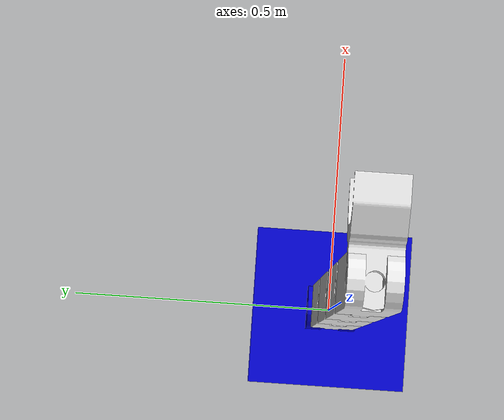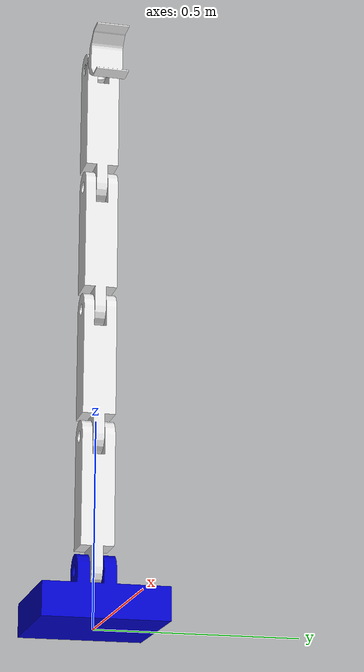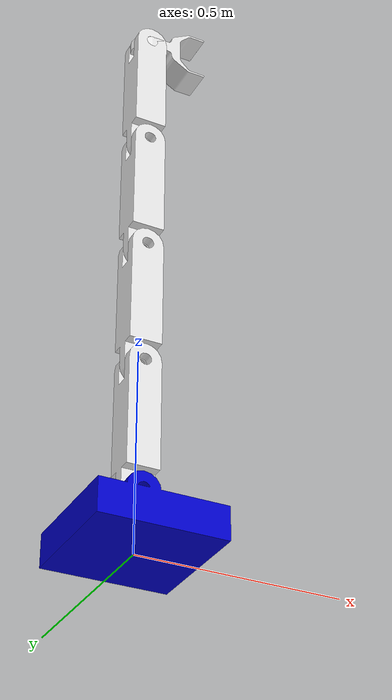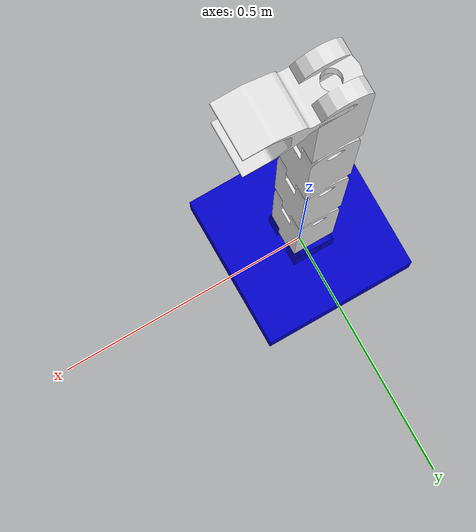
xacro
<?xml version="1.0" encoding="UTF-8"?>
<robot name="aironbot" xmlns:xacro="http://www.ros.org/wiki/xacro">

  <material name="blue">
    <color rgba="0 0 0.8 1"/>
  </material>

  <material name="white">
    <color rgba="0.9 0.9 0.9 1"/>
  </material>

   <link name="base_link">
      <visual>
         <geometry>
            <mesh filename="package://aironbot_description/meshes/manipulator_base_link.stl" />
         </geometry>
         <material name="blue"/>
      </visual>
      <collision>
         <geometry>
            <mesh filename="package://aironbot_description/meshes/manipulator_base_link.stl" />
         </geometry>
      </collision>
   </link>

   <link name="link_1">
      <visual>
         <geometry>
            <mesh filename="package://aironbot_description/meshes/manipulator_link.stl" />
         </geometry>
         <material name="white"/>
      </visual>
      <collision>
         <geometry>
            <mesh filename="package://aironbot_description/meshes/manipulator_link.stl" />
         </geometry>
      </collision>
   </link>

   <joint name="link_1_to_base" type="revolute">
      <parent link="base_link" />
      <child link="link_1" />
      <limit effort="1000.0" lower="-1.57" upper="1.57" velocity="0.5"/>
      <origin xyz="0 0 0.14" />
      <axis xyz="0 1 0" />
   </joint>

   <xacro:macro name="nextlink" params="l1 l2">

	   <link name="link_${l2}">
	      <visual>
		 <geometry>
		    <mesh filename="package://aironbot_description/meshes/manipulator_link.stl" />
		 </geometry>
		 <material name="white"/>
	      </visual>
	      <collision>
		 <geometry>
		    <mesh filename="package://aironbot_description/meshes/manipulator_link.stl" />
		 </geometry>
	      </collision>
	   </link>

	   <joint name="link_${l2}_to_link_${l1}" type="revolute">
	      <parent link="link_${l1}" />
	      <child link="link_${l2}" />
	      <limit effort="1000.0" lower="-1.57" upper="1.57" velocity="0.5"/>
	      <origin xyz="0 0 0.32" />
	      <axis xyz="0 1 0" />
	   </joint>

   </xacro:macro>

   <xacro:nextlink l1="1" l2="2"/>
   <xacro:nextlink l1="2" l2="3"/>
   <xacro:nextlink l1="3" l2="4"/>

   <link name="gripper">
      <visual>
	 <geometry>
	    <mesh filename="package://aironbot_description/meshes/gripper.stl" />
	 </geometry>
	 <material name="white"/>
      </visual>
      <collision>
	 <geometry>
	    <mesh filename="package://aironbot_description/meshes/gripper.stl" />
	 </geometry>
      </collision>
   </link>

   <joint name="gripper_to_link_4" type="revolute">
      <parent link="link_4" />
      <child link="gripper" />
      <limit effort="1000.0" lower="-1.57" upper="1.57" velocity="0.5"/>
      <origin xyz="0 0 0.32" rpy="0 1.57 0" />
      <axis xyz="0 1 0" />
   </joint>

</robot>
